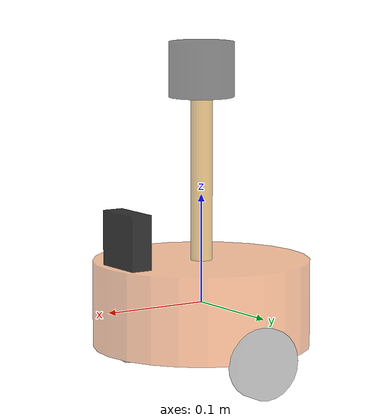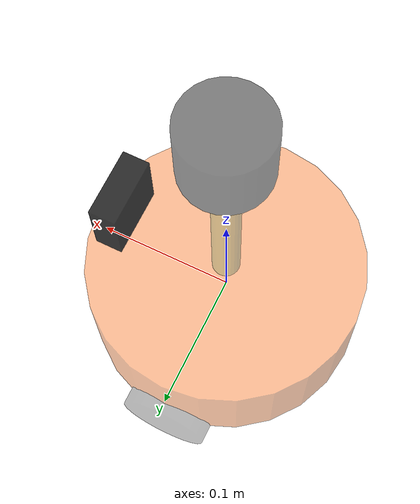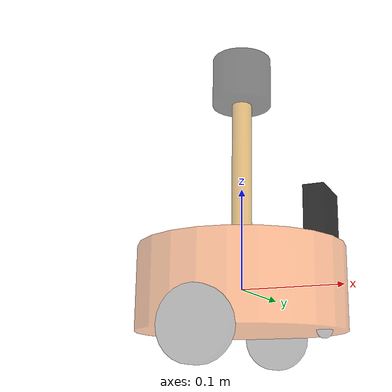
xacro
<robot name="mycar" xmlns:xacro="http://wiki.ros.org/xacro">

    <xacro:include filename="car_base_unilidar.urdf.xacro" />

    <xacro:include filename="car_camera.urdf.xacro" />
    <xacro:include filename="car_laser.urdf.xacro" />

</robot>

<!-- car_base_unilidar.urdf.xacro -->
<robot name="mycar" xmlns:xacro="http://wiki.ros.org/xacro">

    <xacro:property name="base_radius" value="0.1" />
    <xacro:property name="base_length" value="0.08" />
    <link name="base_link">
        <visual>
            <geometry>
                <cylinder radius="0.1" length="0.08" />
            </geometry>

            <origin xyz="0 0 0" rpy="0 0 0" />

            <material name="baselink_color">
                <color rgba="1.0 0.5 0.2 0.5" />
            </material>
        </visual>

    </link>

    <xacro:property name="wheel_radius" value="0.0325" />
    <xacro:property name="wheel_length" value="0.015" />
    <xacro:property name="PI" value="3.1415927" />
    <xacro:property name="wheel_joint_z" value="-${base_length / 2}" />

    <xacro:macro name="wheel_func" params="wheel_name flag">

        <link name="${wheel_name}_wheel">
            <visual>
                <geometry>
                    <cylinder radius="${wheel_radius}" length="${wheel_length}" />
                </geometry>

                <origin xyz="0 0 0" rpy="${PI / 2} 0 0" />

                <material name="wheel_color">
                    <color rgba="0 0 0 0.3" />
                </material>
            </visual>

        </link>

        <joint name="${wheel_name}2link" type="continuous">
            <parent link="base_link"  />
            <child link="${wheel_name}_wheel" />

            <origin xyz="0 ${0.1 * flag} ${wheel_joint_z}" rpy="0 0 0" />
            <axis xyz="0 1 0" />
        </joint>

    </xacro:macro>

    <xacro:wheel_func wheel_name="left" flag="1" />
    <xacro:wheel_func wheel_name="right" flag="-1" />

    <xacro:property name="small_wheel_radius" value="0.0075" />
    <xacro:property name="small_joint_z" value="-${base_length / 2}" />
    <xacro:macro name="small_wheel_func" params="small_wheel_name flag">
        <link name="${small_wheel_name}_wheel">
            <visual>
                <geometry>
                    <sphere radius="${small_wheel_radius}" />
                </geometry>

                <origin xyz="0 0 0" rpy="0 0 0" />

                <material name="wheel_color">
                    <color rgba="0 0 0 0.3" />
                </material>
            </visual>

        </link>

        <joint name="${small_wheel_name}2link" type="continuous">
            <parent link="base_link"  />
            <child link="${small_wheel_name}_wheel" />

            <origin xyz="${0.08 * flag} 0 ${small_joint_z}" rpy="0 0 0" />
            <axis xyz="0 1 0" />
        </joint>

    </xacro:macro >
    <xacro:small_wheel_func small_wheel_name="front" flag="1"/>
    <xacro:small_wheel_func small_wheel_name="back" flag="-1"/>

</robot>

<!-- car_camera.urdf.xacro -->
<robot name="mycar" xmlns:xacro="http://wiki.ros.org/xacro">

    <xacro:property name="camera_length" value="0.02" />
    <xacro:property name="camera_width" value="0.05" />
    <xacro:property name="camera_height" value="0.05" />
    <xacro:property name="joint_camera_x" value="0.08" />
    <xacro:property name="joint_camera_y" value="0" />
    <xacro:property name="joint_camera_z" value="${base_length / 2 + camera_height / 2}" />

    <link name="camera">
        <visual>
            <geometry>
                <box size="${camera_length} ${camera_width} ${camera_height}" />
            </geometry>
            <origin xyz="0 0 0" rpy="0 0 0" />
            <material name="black">
                <color rgba="0 0 0 0.8" />
            </material>
        </visual>
    </link>

    <joint name="camera2base" type="fixed">
        <parent link="base_link" />
        <child link="camera" />
        <origin xyz="${joint_camera_x} ${joint_camera_y} ${joint_camera_z}" rpy="0 0 0" />
    </joint>

</robot>

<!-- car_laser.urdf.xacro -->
<robot name="mycar" xmlns:xacro="http://wiki.ros.org/xacro">

    <xacro:property name="support_radius" value="0.01" />
    <xacro:property name="support_length" value="0.15" />

    <xacro:property name="laser_radius" value="0.03" />
    <xacro:property name="laser_length" value="0.05" />

    <xacro:property name="joint_support_x" value="0" />
    <xacro:property name="joint_support_y" value="0" />
    <xacro:property name="joint_support_z" value="${base_length / 2 + support_length / 2}" />

    <xacro:property name="joint_laser_x" value="0" />
    <xacro:property name="joint_laser_y" value="0" />
    <xacro:property name="joint_laser_z" value="${support_length / 2 + laser_length / 2}" />

    <link name="support">
        <visual>
            <geometry>
                <cylinder radius="${support_radius}" length="${support_length}" />
            </geometry>
            <material name="yellow">
                <color rgba="0.8 0.5 0.0 0.5" />
            </material>
        </visual>

    </link>

    <joint name="support2base" type="fixed">
        <parent link="base_link" />
        <child link="support"/>
        <origin xyz="${joint_support_x} ${joint_support_y} ${joint_support_z}" rpy="0 0 0" />
    </joint>
    <link name="unilidar_imu_initial">
        <visual>
            <geometry>
                <cylinder radius="${laser_radius}" length="${laser_length}" />
            </geometry>
            <material name="black">
                <color rgba="0 0 0 0.5" />
            </material>
        </visual>

    </link>

    <joint name="unilidar_imu_initial2support" type="fixed">
        <parent link="support" />
        <child link="unilidar_imu_initial"/>
        <origin xyz="${joint_laser_x} ${joint_laser_y} ${joint_laser_z}" rpy="0 0 0" />
    </joint>
</robot>
